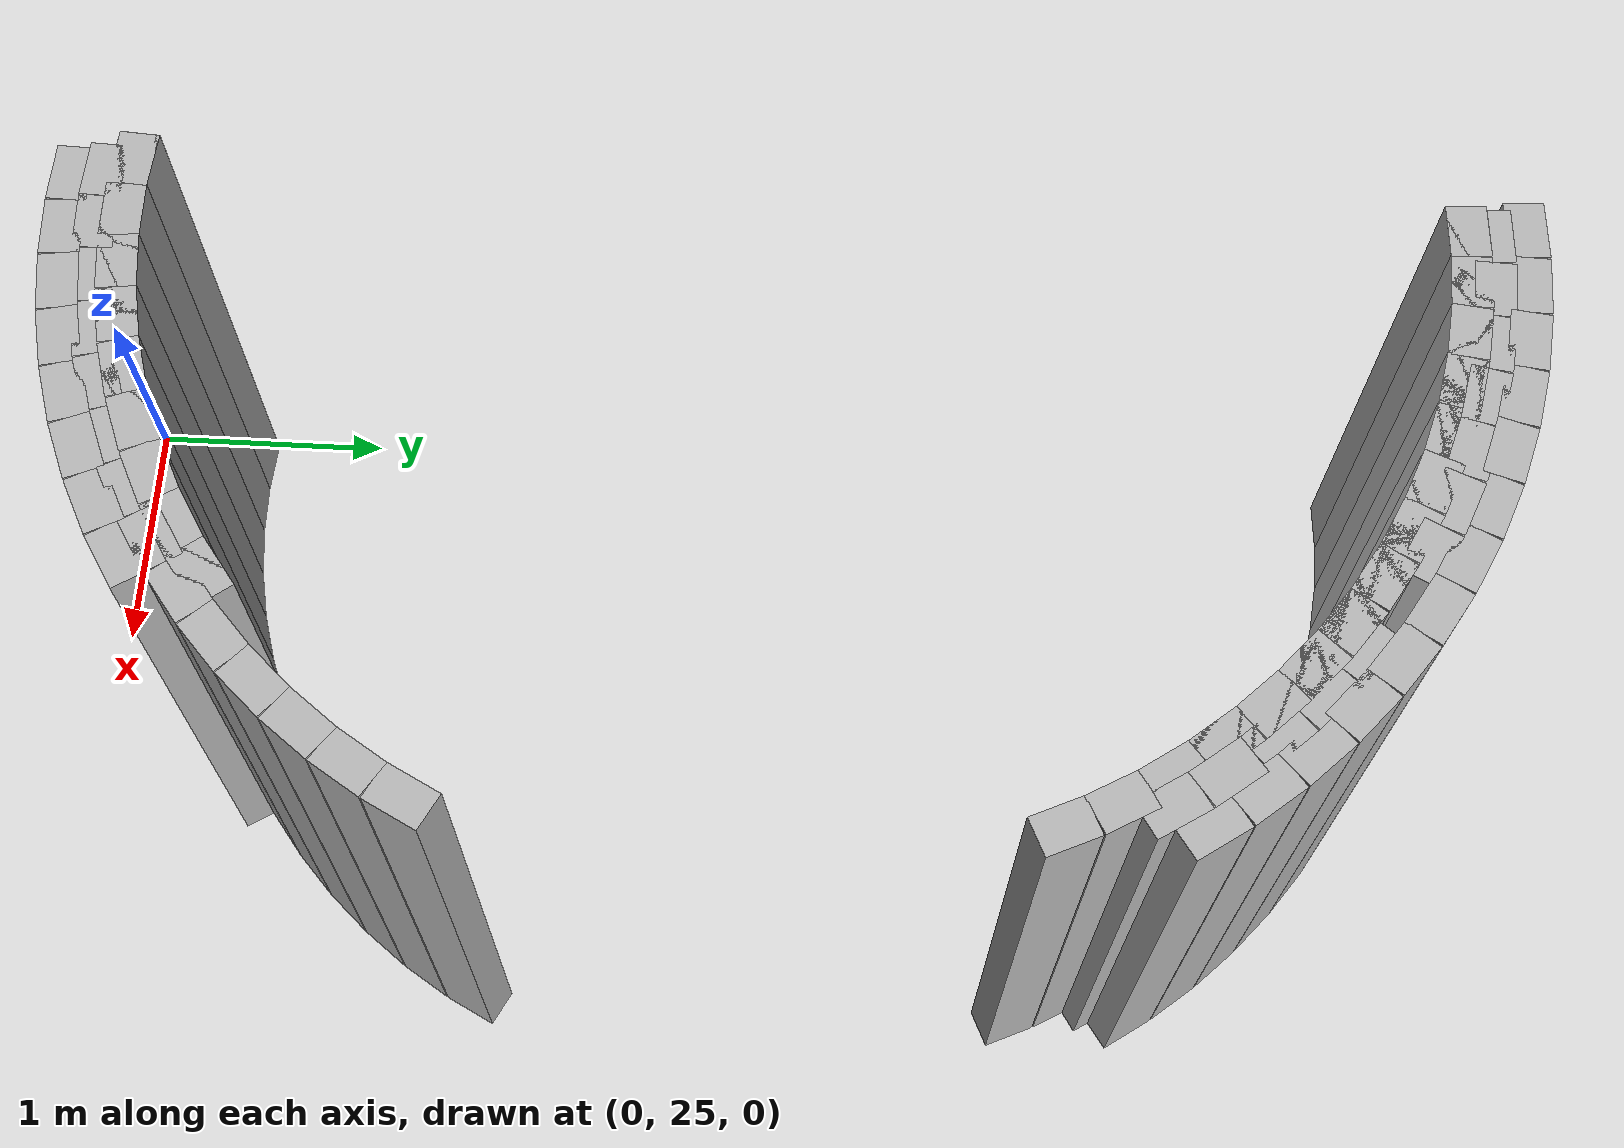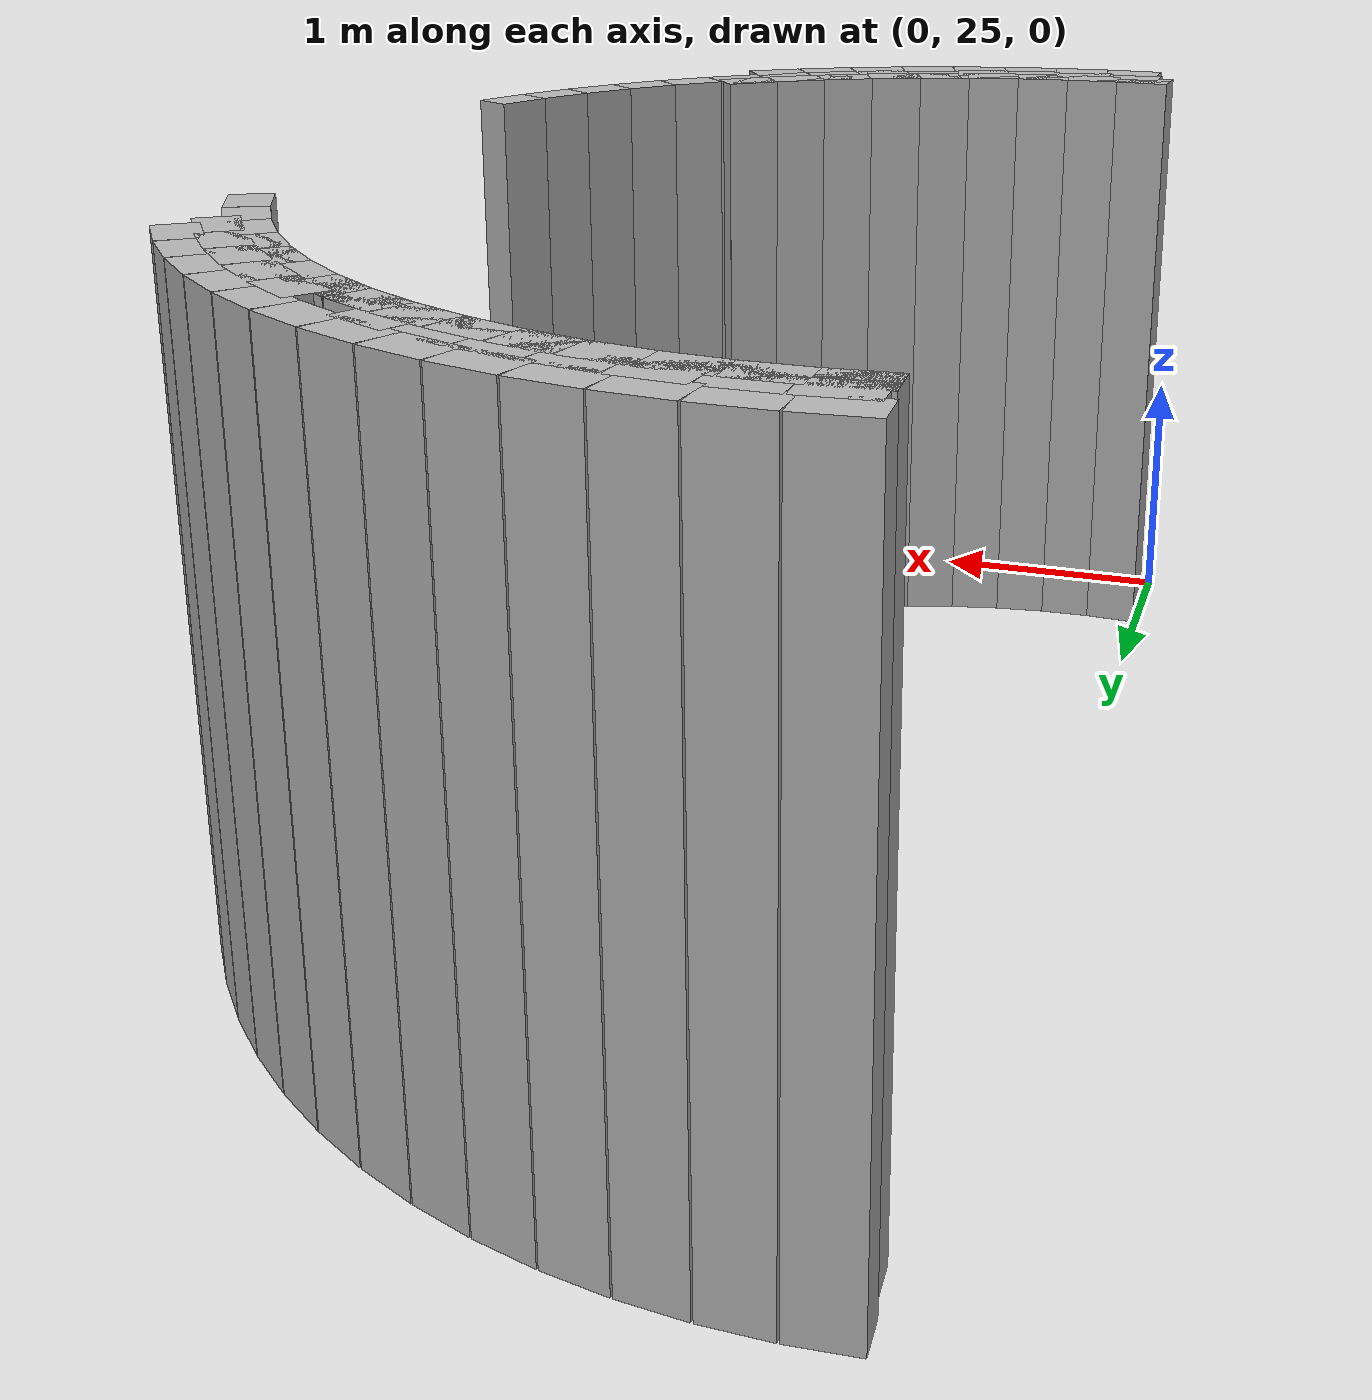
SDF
<sdf version="1.6">
 <model name="sps_0108">
  <static>1</static>
  <allow_auto_disable>0</allow_auto_disable>
  <link name="Wall3677">
   <collision name="collision"><geometry><box><size>0.222353 0.15 2.5</size></box></geometry></collision>
   <visual name="visual">
    <geometry><box><size>0.222353 0.15 2.5</size></box></geometry>
    <transparency>0.0</transparency>
   </visual>
   <pose>1.83828 29.9144 1.25 0 0 -0.654591</pose>
  </link>
  <link name="Wall3678">
   <collision name="collision"><geometry><box><size>0.222517 0.15 2.5</size></box></geometry></collision>
   <visual name="visual">
    <geometry><box><size>0.222517 0.15 2.5</size></box></geometry>
    <transparency>0.0</transparency>
   </visual>
   <pose>2.00848 29.7715 1.25 0 0 -0.742133</pose>
  </link>
  <link name="Wall3679">
   <collision name="collision"><geometry><box><size>0.222393 0.15 2.5</size></box></geometry></collision>
   <visual name="visual">
    <geometry><box><size>0.222393 0.15 2.5</size></box></geometry>
    <transparency>0.0</transparency>
   </visual>
   <pose>2.16558 29.6143 1.25 0 0 -0.829271</pose>
  </link>
  <link name="Wall3680">
   <collision name="collision"><geometry><box><size>0.222546 0.15 2.5</size></box></geometry></collision>
   <visual name="visual">
    <geometry><box><size>0.222546 0.15 2.5</size></box></geometry>
    <transparency>0.0</transparency>
   </visual>
   <pose>2.30837 29.444 1.25 0 0 -0.916873</pose>
  </link>
  <link name="Wall3681">
   <collision name="collision"><geometry><box><size>0.222333 0.15 2.5</size></box></geometry></collision>
   <visual name="visual">
    <geometry><box><size>0.222333 0.15 2.5</size></box></geometry>
    <transparency>0.0</transparency>
   </visual>
   <pose>2.43575 29.2619 1.25 0 0 -1.00396</pose>
  </link>
  <link name="Wall3693">
   <collision name="collision"><geometry><box><size>0.222298 0.15 2.5</size></box></geometry></collision>
   <visual name="visual">
    <geometry><box><size>0.222298 0.15 2.5</size></box></geometry>
    <transparency>0.0</transparency>
   </visual>
   <pose>2.54613 26.7167 1.25 0 0 -2.05053</pose>
  </link>
  <link name="Wall3694">
   <collision name="collision"><geometry><box><size>0.222483 0.15 2.5</size></box></geometry></collision>
   <visual name="visual">
    <geometry><box><size>0.222483 0.15 2.5</size></box></geometry>
    <transparency>0.0</transparency>
   </visual>
   <pose>2.43505 26.5243 1.25 0 0 -2.13818</pose>
  </link>
  <link name="Wall3695">
   <collision name="collision"><geometry><box><size>0.222501 0.15 2.5</size></box></geometry></collision>
   <visual name="visual">
    <geometry><box><size>0.222501 0.15 2.5</size></box></geometry>
    <transparency>0.0</transparency>
   </visual>
   <pose>2.30746 26.3423 1.25 0 0 -2.22626</pose>
  </link>
  <link name="Wall3696">
   <collision name="collision"><geometry><box><size>0.222393 0.15 2.5</size></box></geometry></collision>
   <visual name="visual">
    <geometry><box><size>0.222393 0.15 2.5</size></box></geometry>
    <transparency>0.0</transparency>
   </visual>
   <pose>2.16454 26.1721 1.25 0 0 -2.31232</pose>
  </link>
  <link name="Wall3697">
   <collision name="collision"><geometry><box><size>0.222528 0.15 2.5</size></box></geometry></collision>
   <visual name="visual">
    <geometry><box><size>0.222528 0.15 2.5</size></box></geometry>
    <transparency>0.0</transparency>
   </visual>
   <pose>2.00735 26.015 1.25 0 0 -2.40062</pose>
  </link>
  <link name="Wall3698">
   <collision name="collision"><geometry><box><size>0.222353 0.15 2.5</size></box></geometry></collision>
   <visual name="visual">
    <geometry><box><size>0.222353 0.15 2.5</size></box></geometry>
    <transparency>0.0</transparency>
   </visual>
   <pose>1.83706 25.8722 1.25 0 0 -2.487</pose>
  </link>
  <link name="Wall3699">
   <collision name="collision"><geometry><box><size>0.22267 0.15 2.5</size></box></geometry></collision>
   <visual name="visual">
    <geometry><box><size>0.22267 0.15 2.5</size></box></geometry>
    <transparency>0.0</transparency>
   </visual>
   <pose>1.65496 25.7447 1.25 0 0 -2.57442</pose>
  </link>
  <link name="Wall3700">
   <collision name="collision"><geometry><box><size>0.222298 0.15 2.5</size></box></geometry></collision>
   <visual name="visual">
    <geometry><box><size>0.222298 0.15 2.5</size></box></geometry>
    <transparency>0.0</transparency>
   </visual>
   <pose>1.46246 25.6336 1.25 0 0 -2.66186</pose>
  </link>
  <link name="Wall3701">
   <collision name="collision"><geometry><box><size>0.222512 0.15 2.5</size></box></geometry></collision>
   <visual name="visual">
    <geometry><box><size>0.222512 0.15 2.5</size></box></geometry>
    <transparency>0.0</transparency>
   </visual>
   <pose>1.26104 25.5398 1.25 0 0 -2.74952</pose>
  </link>
  <link name="Wall3702">
   <collision name="collision"><geometry><box><size>0.222473 0.15 2.5</size></box></geometry></collision>
   <visual name="visual">
    <geometry><box><size>0.222473 0.15 2.5</size></box></geometry>
    <transparency>0.0</transparency>
   </visual>
   <pose>1.05215 25.4638 1.25 0 0 -2.83589</pose>
  </link>
  <link name="Wall3703">
   <collision name="collision"><geometry><box><size>0.222472 0.15 2.5</size></box></geometry></collision>
   <visual name="visual">
    <geometry><box><size>0.222472 0.15 2.5</size></box></geometry>
    <transparency>0.0</transparency>
   </visual>
   <pose>0.837455 25.4063 1.25 0 0 -2.92397</pose>
  </link>
  <link name="Wall3704">
   <collision name="collision"><geometry><box><size>0.222478 0.15 2.5</size></box></geometry></collision>
   <visual name="visual">
    <geometry><box><size>0.222478 0.15 2.5</size></box></geometry>
    <transparency>0.0</transparency>
   </visual>
   <pose>0.618552 25.3678 1.25 0 0 -3.01091</pose>
  </link>
  <link name="Wall3705">
   <collision name="collision"><geometry><box><size>0.222436 0.15 2.5</size></box></geometry></collision>
   <visual name="visual">
    <geometry><box><size>0.222436 0.15 2.5</size></box></geometry>
    <transparency>0.0</transparency>
   </visual>
   <pose>0.397147 25.3485 1.25 0 0 -3.0985</pose>
  </link>
  <link name="Wall3706">
   <collision name="collision"><geometry><box><size>0.222382 0.15 2.5</size></box></geometry></collision>
   <visual name="visual">
    <geometry><box><size>0.222382 0.15 2.5</size></box></geometry>
    <transparency>0.0</transparency>
   </visual>
   <pose>0.174949 25.3486 1.25 0 -0 3.09766</pose>
  </link>
  <link name="Wall3741">
   <collision name="collision"><geometry><box><size>0.222375 0.15 2.5</size></box></geometry></collision>
   <visual name="visual">
    <geometry><box><size>0.222375 0.15 2.5</size></box></geometry>
    <transparency>0.0</transparency>
   </visual>
   <pose>0.176353 30.4389 1.25 0 -0 0.0431052</pose>
  </link>
  <link name="Wall3742">
   <collision name="collision"><geometry><box><size>0.222443 0.15 2.5</size></box></geometry></collision>
   <visual name="visual">
    <geometry><box><size>0.222443 0.15 2.5</size></box></geometry>
    <transparency>0.0</transparency>
   </visual>
   <pose>0.398551 30.4388 1.25 0 0 -0.0439157</pose>
  </link>
  <link name="Wall3743">
   <collision name="collision"><geometry><box><size>0.222478 0.15 2.5</size></box></geometry></collision>
   <visual name="visual">
    <geometry><box><size>0.222478 0.15 2.5</size></box></geometry>
    <transparency>0.0</transparency>
   </visual>
   <pose>0.619956 30.4194 1.25 0 0 -0.130684</pose>
  </link>
  <link name="Wall3744">
   <collision name="collision"><geometry><box><size>0.222511 0.15 2.5</size></box></geometry></collision>
   <visual name="visual">
    <geometry><box><size>0.222511 0.15 2.5</size></box></geometry>
    <transparency>0.0</transparency>
   </visual>
   <pose>0.838859 30.3808 1.25 0 0 -0.218431</pose>
  </link>
  <link name="Wall3745">
   <collision name="collision"><geometry><box><size>0.222491 0.15 2.5</size></box></geometry></collision>
   <visual name="visual">
    <geometry><box><size>0.222491 0.15 2.5</size></box></geometry>
    <transparency>0.0</transparency>
   </visual>
   <pose>1.05355 30.3232 1.25 0 0 -0.305961</pose>
  </link>
  <link name="Wall3746">
   <collision name="collision"><geometry><box><size>0.222412 0.15 2.5</size></box></geometry></collision>
   <visual name="visual">
    <geometry><box><size>0.222412 0.15 2.5</size></box></geometry>
    <transparency>0.0</transparency>
   </visual>
   <pose>1.26235 30.2471 1.25 0 0 -0.393145</pose>
  </link>
  <link name="Wall3747">
   <collision name="collision"><geometry><box><size>0.222545 0.15 2.5</size></box></geometry></collision>
   <visual name="visual">
    <geometry><box><size>0.222545 0.15 2.5</size></box></geometry>
    <transparency>0.0</transparency>
   </visual>
   <pose>1.46377 30.1531 1.25 0 0 -0.480084</pose>
  </link>
  <link name="Wall4588">
   <collision name="collision"><geometry><box><size>0.220288 0.15 2.5</size></box></geometry></collision>
   <visual name="visual">
    <geometry><box><size>0.220288 0.15 2.5</size></box></geometry>
    <transparency>0.0</transparency>
   </visual>
   <pose>1.77355 25.9336 1.25 0 0 -2.49793</pose>
  </link>
  <link name="Wall4589">
   <collision name="collision"><geometry><box><size>0.220237 0.15 2.5</size></box></geometry></collision>
   <visual name="visual">
    <geometry><box><size>0.220237 0.15 2.5</size></box></geometry>
    <transparency>0.0</transparency>
   </visual>
   <pose>1.59185 25.8095 1.25 0 0 -2.58672</pose>
  </link>
  <link name="Wall4590">
   <collision name="collision"><geometry><box><size>0.220496 0.15 2.5</size></box></geometry></collision>
   <visual name="visual">
    <geometry><box><size>0.220496 0.15 2.5</size></box></geometry>
    <transparency>0.0</transparency>
   </visual>
   <pose>1.39974 25.702 1.25 0 0 -2.67596</pose>
  </link>
  <link name="Wall4591">
   <collision name="collision"><geometry><box><size>0.220209 0.15 2.5</size></box></geometry></collision>
   <visual name="visual">
    <geometry><box><size>0.220209 0.15 2.5</size></box></geometry>
    <transparency>0.0</transparency>
   </visual>
   <pose>1.19884 25.612 1.25 0 0 -2.76495</pose>
  </link>
  <link name="Wall4592">
   <collision name="collision"><geometry><box><size>0.220436 0.15 2.5</size></box></geometry></collision>
   <visual name="visual">
    <geometry><box><size>0.220436 0.15 2.5</size></box></geometry>
    <transparency>0.0</transparency>
   </visual>
   <pose>0.990745 25.5403 1.25 0 0 -2.8547</pose>
  </link>
  <link name="Wall4593">
   <collision name="collision"><geometry><box><size>0.22032 0.15 2.5</size></box></geometry></collision>
   <visual name="visual">
    <geometry><box><size>0.22032 0.15 2.5</size></box></geometry>
    <transparency>0.0</transparency>
   </visual>
   <pose>0.77703 25.4874 1.25 0 0 -2.94333</pose>
  </link>
  <link name="Wall4594">
   <collision name="collision"><geometry><box><size>0.220284 0.15 2.5</size></box></geometry></collision>
   <visual name="visual">
    <geometry><box><size>0.220284 0.15 2.5</size></box></geometry>
    <transparency>0.0</transparency>
   </visual>
   <pose>0.559531 25.4538 1.25 0 0 -3.03332</pose>
  </link>
  <link name="Wall4595">
   <collision name="collision"><geometry><box><size>0.220442 0.15 2.5</size></box></geometry></collision>
   <visual name="visual">
    <geometry><box><size>0.220442 0.15 2.5</size></box></geometry>
    <transparency>0.0</transparency>
   </visual>
   <pose>0.339835 25.4397 1.25 0 0 -3.12166</pose>
  </link>
  <link name="Wall4596">
   <collision name="collision"><geometry><box><size>0.220325 0.15 2.5</size></box></geometry></collision>
   <visual name="visual">
    <geometry><box><size>0.220325 0.15 2.5</size></box></geometry>
    <transparency>0.0</transparency>
   </visual>
   <pose>0.119743 25.4452 1.25 0 -0 3.07173</pose>
  </link>
  <link name="Wall4619">
   <collision name="collision"><geometry><box><size>0.210897 0.15 2.5</size></box></geometry></collision>
   <visual name="visual">
    <geometry><box><size>0.210897 0.15 2.5</size></box></geometry>
    <transparency>0.0</transparency>
   </visual>
   <pose>0.160148 30.3526 1.25 0 -0 0.0500885</pose>
  </link>
  <link name="Wall4620">
   <collision name="collision"><geometry><box><size>0.210701 0.15 2.5</size></box></geometry></collision>
   <visual name="visual">
    <geometry><box><size>0.210701 0.15 2.5</size></box></geometry>
    <transparency>0.0</transparency>
   </visual>
   <pose>0.37075 30.3542 1.25 0 0 -0.0350581</pose>
  </link>
  <link name="Wall4621">
   <collision name="collision"><geometry><box><size>0.210626 0.15 2.5</size></box></geometry></collision>
   <visual name="visual">
    <geometry><box><size>0.210626 0.15 2.5</size></box></geometry>
    <transparency>0.0</transparency>
   </visual>
   <pose>0.580558 30.3376 1.25 0 0 -0.122594</pose>
  </link>
  <link name="Wall4622">
   <collision name="collision"><geometry><box><size>0.210745 0.15 2.5</size></box></geometry></collision>
   <visual name="visual">
    <geometry><box><size>0.210745 0.15 2.5</size></box></geometry>
    <transparency>0.0</transparency>
   </visual>
   <pose>0.788169 30.3029 1.25 0 0 -0.208585</pose>
  </link>
  <link name="Wall4623">
   <collision name="collision"><geometry><box><size>0.210514 0.15 2.5</size></box></geometry></collision>
   <visual name="visual">
    <geometry><box><size>0.210514 0.15 2.5</size></box></geometry>
    <transparency>0.0</transparency>
   </visual>
   <pose>0.991966 30.2505 1.25 0 0 -0.295067</pose>
  </link>
  <link name="Wall4624">
   <collision name="collision"><geometry><box><size>0.210437 0.15 2.5</size></box></geometry></collision>
   <visual name="visual">
    <geometry><box><size>0.210437 0.15 2.5</size></box></geometry>
    <transparency>0.0</transparency>
   </visual>
   <pose>1.19036 30.1808 1.25 0 0 -0.380668</pose>
  </link>
  <link name="Wall4625">
   <collision name="collision"><geometry><box><size>0.210478 0.15 2.5</size></box></geometry></collision>
   <visual name="visual">
    <geometry><box><size>0.210478 0.15 2.5</size></box></geometry>
    <transparency>0.0</transparency>
   </visual>
   <pose>1.38216 30.0946 1.25 0 0 -0.463907</pose>
  </link>
  <link name="Wall4626">
   <collision name="collision"><geometry><box><size>0.21032 0.15 2.5</size></box></geometry></collision>
   <visual name="visual">
    <geometry><box><size>0.21032 0.15 2.5</size></box></geometry>
    <transparency>0.0</transparency>
   </visual>
   <pose>1.56597 29.9926 1.25 0 0 -0.549279</pose>
  </link>
  <link name="Wall4627">
   <collision name="collision"><geometry><box><size>0.210484 0.15 2.5</size></box></geometry></collision>
   <visual name="visual">
    <geometry><box><size>0.210484 0.15 2.5</size></box></geometry>
    <transparency>0.0</transparency>
   </visual>
   <pose>1.74047 29.8754 1.25 0 0 -0.6337</pose>
  </link>
  <link name="Wall4628">
   <collision name="collision"><geometry><box><size>0.210433 0.15 2.5</size></box></geometry></collision>
   <visual name="visual">
    <geometry><box><size>0.210433 0.15 2.5</size></box></geometry>
    <transparency>0.0</transparency>
   </visual>
   <pose>1.90447 29.7438 1.25 0 0 -0.718694</pose>
  </link>
  <link name="Wall4629">
   <collision name="collision"><geometry><box><size>0.210473 0.15 2.5</size></box></geometry></collision>
   <visual name="visual">
    <geometry><box><size>0.210473 0.15 2.5</size></box></geometry>
    <transparency>0.0</transparency>
   </visual>
   <pose>2.05675 29.5988 1.25 0 0 -0.803034</pose>
  </link>
  <link name="Wall4630">
   <collision name="collision"><geometry><box><size>0.210419 0.15 2.5</size></box></geometry></collision>
   <visual name="visual">
    <geometry><box><size>0.210419 0.15 2.5</size></box></geometry>
    <transparency>0.0</transparency>
   </visual>
   <pose>2.19625 29.4415 1.25 0 0 -0.88772</pose>
  </link>
  <link name="Wall4631">
   <collision name="collision"><geometry><box><size>0.210378 0.15 2.5</size></box></geometry></collision>
   <visual name="visual">
    <geometry><box><size>0.210378 0.15 2.5</size></box></geometry>
    <transparency>0.0</transparency>
   </visual>
   <pose>2.32195 29.273 1.25 0 0 -0.971931</pose>
  </link>
  <link name="Wall4632">
   <collision name="collision"><geometry><box><size>0.210387 0.15 2.5</size></box></geometry></collision>
   <visual name="visual">
    <geometry><box><size>0.210387 0.15 2.5</size></box></geometry>
    <transparency>0.0</transparency>
   </visual>
   <pose>2.43294 29.0945 1.25 0 0 -1.05705</pose>
  </link>
  <link name="Wall4633">
   <collision name="collision"><geometry><box><size>0.210494 0.15 2.5</size></box></geometry></collision>
   <visual name="visual">
    <geometry><box><size>0.210494 0.15 2.5</size></box></geometry>
    <transparency>0.0</transparency>
   </visual>
   <pose>2.52843 28.9072 1.25 0 0 -1.14165</pose>
  </link>
  <link name="Wall5666">
   <collision name="collision"><geometry><box><size>0.220581 0.15 2.5</size></box></geometry></collision>
   <visual name="visual">
    <geometry><box><size>0.220581 0.15 2.5</size></box></geometry>
    <transparency>0.0</transparency>
   </visual>
   <pose>1.77303 25.9335 1.25 0 0 -2.49754</pose>
  </link>
  <link name="Wall5667">
   <collision name="collision"><geometry><box><size>0.220205 0.15 2.5</size></box></geometry></collision>
   <visual name="visual">
    <geometry><box><size>0.220205 0.15 2.5</size></box></geometry>
    <transparency>0.0</transparency>
   </visual>
   <pose>1.59124 25.8093 1.25 0 0 -2.58696</pose>
  </link>
  <link name="Wall5668">
   <collision name="collision"><geometry><box><size>0.220195 0.15 2.5</size></box></geometry></collision>
   <visual name="visual">
    <geometry><box><size>0.220195 0.15 2.5</size></box></geometry>
    <transparency>0.0</transparency>
   </visual>
   <pose>1.39925 25.7019 1.25 0 0 -2.67621</pose>
  </link>
  <link name="Wall5669">
   <collision name="collision"><geometry><box><size>0.220436 0.15 2.5</size></box></geometry></collision>
   <visual name="visual">
    <geometry><box><size>0.220436 0.15 2.5</size></box></geometry>
    <transparency>0.0</transparency>
   </visual>
   <pose>1.19836 25.612 1.25 0 0 -2.76535</pose>
  </link>
  <link name="Wall5670">
   <collision name="collision"><geometry><box><size>0.220201 0.15 2.5</size></box></geometry></collision>
   <visual name="visual">
    <geometry><box><size>0.220201 0.15 2.5</size></box></geometry>
    <transparency>0.0</transparency>
   </visual>
   <pose>0.990257 25.5403 1.25 0 0 -2.85438</pose>
  </link>
  <link name="Wall5671">
   <collision name="collision"><geometry><box><size>0.22032 0.15 2.5</size></box></geometry></collision>
   <visual name="visual">
    <geometry><box><size>0.22032 0.15 2.5</size></box></geometry>
    <transparency>0.0</transparency>
   </visual>
   <pose>0.776664 25.4874 1.25 0 0 -2.94333</pose>
  </link>
  <link name="Wall5672">
   <collision name="collision"><geometry><box><size>0.220311 0.15 2.5</size></box></geometry></collision>
   <visual name="visual">
    <geometry><box><size>0.220311 0.15 2.5</size></box></geometry>
    <transparency>0.0</transparency>
   </visual>
   <pose>0.559165 25.4537 1.25 0 0 -3.03222</pose>
  </link>
  <link name="Wall5673">
   <collision name="collision"><geometry><box><size>0.220442 0.15 2.5</size></box></geometry></collision>
   <visual name="visual">
    <geometry><box><size>0.220442 0.15 2.5</size></box></geometry>
    <transparency>0.0</transparency>
   </visual>
   <pose>0.339469 25.4395 1.25 0 0 -3.12166</pose>
  </link>
  <link name="Wall5674">
   <collision name="collision"><geometry><box><size>0.220329 0.15 2.5</size></box></geometry></collision>
   <visual name="visual">
    <geometry><box><size>0.220329 0.15 2.5</size></box></geometry>
    <transparency>0.0</transparency>
   </visual>
   <pose>0.119376 25.445 1.25 0 -0 3.07145</pose>
  </link>
  <link name="Wall5697">
   <collision name="collision"><geometry><box><size>0.210714 0.15 2.5</size></box></geometry></collision>
   <visual name="visual">
    <geometry><box><size>0.210714 0.15 2.5</size></box></geometry>
    <transparency>0.0</transparency>
   </visual>
   <pose>0.160056 30.3526 1.25 0 -0 0.050132</pose>
  </link>
  <link name="Wall5698">
   <collision name="collision"><geometry><box><size>0.210707 0.15 2.5</size></box></geometry></collision>
   <visual name="visual">
    <geometry><box><size>0.210707 0.15 2.5</size></box></geometry>
    <transparency>0.0</transparency>
   </visual>
   <pose>0.370567 30.3541 1.25 0 0 -0.0359266</pose>
  </link>
  <link name="Wall5699">
   <collision name="collision"><geometry><box><size>0.210815 0.15 2.5</size></box></geometry></collision>
   <visual name="visual">
    <geometry><box><size>0.210815 0.15 2.5</size></box></geometry>
    <transparency>0.0</transparency>
   </visual>
   <pose>0.580467 30.3374 1.25 0 0 -0.122775</pose>
  </link>
  <link name="Wall5700">
   <collision name="collision"><geometry><box><size>0.210694 0.15 2.5</size></box></geometry></collision>
   <visual name="visual">
    <geometry><box><size>0.210694 0.15 2.5</size></box></geometry>
    <transparency>0.0</transparency>
   </visual>
   <pose>0.788169 30.3028 1.25 0 0 -0.207451</pose>
  </link>
  <link name="Wall5701">
   <collision name="collision"><geometry><box><size>0.210334 0.15 2.5</size></box></geometry></collision>
   <visual name="visual">
    <geometry><box><size>0.210334 0.15 2.5</size></box></geometry>
    <transparency>0.0</transparency>
   </visual>
   <pose>0.991844 30.2504 1.25 0 0 -0.296237</pose>
  </link>
  <link name="Wall5702">
   <collision name="collision"><geometry><box><size>0.210596 0.15 2.5</size></box></geometry></collision>
   <visual name="visual">
    <geometry><box><size>0.210596 0.15 2.5</size></box></geometry>
    <transparency>0.0</transparency>
   </visual>
   <pose>1.19024 30.1807 1.25 0 0 -0.37943</pose>
  </link>
  <link name="Wall5703">
   <collision name="collision"><geometry><box><size>0.210259 0.15 2.5</size></box></geometry></collision>
   <visual name="visual">
    <geometry><box><size>0.210259 0.15 2.5</size></box></geometry>
    <transparency>0.0</transparency>
   </visual>
   <pose>1.38204 30.0946 1.25 0 0 -0.464427</pose>
  </link>
  <link name="Wall5704">
   <collision name="collision"><geometry><box><size>0.210624 0.15 2.5</size></box></geometry></collision>
   <visual name="visual">
    <geometry><box><size>0.210624 0.15 2.5</size></box></geometry>
    <transparency>0.0</transparency>
   </visual>
   <pose>1.56585 29.9925 1.25 0 0 -0.549415</pose>
  </link>
  <link name="Wall5705">
   <collision name="collision"><geometry><box><size>0.210484 0.15 2.5</size></box></geometry></collision>
   <visual name="visual">
    <geometry><box><size>0.210484 0.15 2.5</size></box></geometry>
    <transparency>0.0</transparency>
   </visual>
   <pose>1.74047 29.8752 1.25 0 0 -0.6337</pose>
  </link>
  <link name="Wall5706">
   <collision name="collision"><geometry><box><size>0.210313 0.15 2.5</size></box></geometry></collision>
   <visual name="visual">
    <geometry><box><size>0.210313 0.15 2.5</size></box></geometry>
    <transparency>0.0</transparency>
   </visual>
   <pose>1.90447 29.7437 1.25 0 0 -0.718038</pose>
  </link>
  <link name="Wall5707">
   <collision name="collision"><geometry><box><size>0.210473 0.15 2.5</size></box></geometry></collision>
   <visual name="visual">
    <geometry><box><size>0.210473 0.15 2.5</size></box></geometry>
    <transparency>0.0</transparency>
   </visual>
   <pose>2.05675 29.5988 1.25 0 0 -0.803034</pose>
  </link>
  <link name="Wall5708">
   <collision name="collision"><geometry><box><size>0.210419 0.15 2.5</size></box></geometry></collision>
   <visual name="visual">
    <geometry><box><size>0.210419 0.15 2.5</size></box></geometry>
    <transparency>0.0</transparency>
   </visual>
   <pose>2.19625 29.4415 1.25 0 0 -0.88772</pose>
  </link>
  <link name="Wall5709">
   <collision name="collision"><geometry><box><size>0.210378 0.15 2.5</size></box></geometry></collision>
   <visual name="visual">
    <geometry><box><size>0.210378 0.15 2.5</size></box></geometry>
    <transparency>0.0</transparency>
   </visual>
   <pose>2.32195 29.273 1.25 0 0 -0.971931</pose>
  </link>
  <link name="Wall5710">
   <collision name="collision"><geometry><box><size>0.210387 0.15 2.5</size></box></geometry></collision>
   <visual name="visual">
    <geometry><box><size>0.210387 0.15 2.5</size></box></geometry>
    <transparency>0.0</transparency>
   </visual>
   <pose>2.43294 29.0945 1.25 0 0 -1.05705</pose>
  </link>
  <link name="Wall5711">
   <collision name="collision"><geometry><box><size>0.210494 0.15 2.5</size></box></geometry></collision>
   <visual name="visual">
    <geometry><box><size>0.210494 0.15 2.5</size></box></geometry>
    <transparency>0.0</transparency>
   </visual>
   <pose>2.52843 28.9072 1.25 0 0 -1.14165</pose>
  </link>
  <link name="Wall6421">
   <collision name="collision"><geometry><box><size>0.229307 0.15 2.5</size></box></geometry></collision>
   <visual name="visual">
    <geometry><box><size>0.229307 0.15 2.5</size></box></geometry>
    <transparency>0.0</transparency>
   </visual>
   <pose>0.145164 30.5636 1.25 0 -0 0.0513939</pose>
  </link>
  <link name="Wall6422">
   <collision name="collision"><geometry><box><size>0.229326 0.15 2.5</size></box></geometry></collision>
   <visual name="visual">
    <geometry><box><size>0.229326 0.15 2.5</size></box></geometry>
    <transparency>0.0</transparency>
   </visual>
   <pose>0.374259 30.5655 1.25 0 0 -0.0348727</pose>
  </link>
  <link name="Wall6423">
   <collision name="collision"><geometry><box><size>0.229106 0.15 2.5</size></box></geometry></collision>
   <visual name="visual">
    <geometry><box><size>0.229106 0.15 2.5</size></box></geometry>
    <transparency>0.0</transparency>
   </visual>
   <pose>0.602561 30.5476 1.25 0 0 -0.121513</pose>
  </link>
  <link name="Wall6424">
   <collision name="collision"><geometry><box><size>0.229323 0.15 2.5</size></box></geometry></collision>
   <visual name="visual">
    <geometry><box><size>0.229323 0.15 2.5</size></box></geometry>
    <transparency>0.0</transparency>
   </visual>
   <pose>0.828452 30.51 1.25 0 0 -0.208305</pose>
  </link>
  <link name="Wall6425">
   <collision name="collision"><geometry><box><size>0.229075 0.15 2.5</size></box></geometry></collision>
   <visual name="visual">
    <geometry><box><size>0.229075 0.15 2.5</size></box></geometry>
    <transparency>0.0</transparency>
   </visual>
   <pose>1.05025 30.4531 1.25 0 0 -0.294111</pose>
  </link>
  <link name="Wall6426">
   <collision name="collision"><geometry><box><size>0.229037 0.15 2.5</size></box></geometry></collision>
   <visual name="visual">
    <geometry><box><size>0.229037 0.15 2.5</size></box></geometry>
    <transparency>0.0</transparency>
   </visual>
   <pose>1.26626 30.3775 1.25 0 0 -0.37917</pose>
  </link>
  <link name="Wall6427">
   <collision name="collision"><geometry><box><size>0.229011 0.15 2.5</size></box></geometry></collision>
   <visual name="visual">
    <geometry><box><size>0.229011 0.15 2.5</size></box></geometry>
    <transparency>0.0</transparency>
   </visual>
   <pose>1.47506 30.2839 1.25 0 0 -0.463648</pose>
  </link>
  <link name="Wall6428">
   <collision name="collision"><geometry><box><size>0.229057 0.15 2.5</size></box></geometry></collision>
   <visual name="visual">
    <geometry><box><size>0.229057 0.15 2.5</size></box></geometry>
    <transparency>0.0</transparency>
   </visual>
   <pose>1.67516 30.1729 1.25 0 0 -0.549194</pose>
  </link>
  <link name="Wall6429">
   <collision name="collision"><geometry><box><size>0.229089 0.15 2.5</size></box></geometry></collision>
   <visual name="visual">
    <geometry><box><size>0.229089 0.15 2.5</size></box></geometry>
    <transparency>0.0</transparency>
   </visual>
   <pose>1.86517 30.0453 1.25 0 0 -0.633537</pose>
  </link>
  <link name="Wall6430">
   <collision name="collision"><geometry><box><size>0.229031 0.15 2.5</size></box></geometry></collision>
   <visual name="visual">
    <geometry><box><size>0.229031 0.15 2.5</size></box></geometry>
    <transparency>0.0</transparency>
   </visual>
   <pose>2.04366 29.9021 1.25 0 0 -0.71883</pose>
  </link>
  <link name="Wall6431">
   <collision name="collision"><geometry><box><size>0.228992 0.15 2.5</size></box></geometry></collision>
   <visual name="visual">
    <geometry><box><size>0.228992 0.15 2.5</size></box></geometry>
    <transparency>0.0</transparency>
   </visual>
   <pose>2.20934 29.7443 1.25 0 0 -0.803304</pose>
  </link>
  <link name="Wall6432">
   <collision name="collision"><geometry><box><size>0.229053 0.15 2.5</size></box></geometry></collision>
   <visual name="visual">
    <geometry><box><size>0.229053 0.15 2.5</size></box></geometry>
    <transparency>0.0</transparency>
   </visual>
   <pose>2.36105 29.573 1.25 0 0 -0.888648</pose>
  </link>
  <link name="Wall6433">
   <collision name="collision"><geometry><box><size>0.229167 0.15 2.5</size></box></geometry></collision>
   <visual name="visual">
    <geometry><box><size>0.229167 0.15 2.5</size></box></geometry>
    <transparency>0.0</transparency>
   </visual>
   <pose>2.49776 29.3894 1.25 0 0 -0.972748</pose>
  </link>
  <link name="Wall18866">
   <collision name="collision"><geometry><box><size>0.210714 0.15 2.5</size></box></geometry></collision>
   <visual name="visual">
    <geometry><box><size>0.210714 0.15 2.5</size></box></geometry>
    <transparency>0.0</transparency>
   </visual>
   <pose>0.160056 30.3524 1.25 0 -0 0.050132</pose>
  </link>
  <link name="Wall18867">
   <collision name="collision"><geometry><box><size>0.210707 0.15 2.5</size></box></geometry></collision>
   <visual name="visual">
    <geometry><box><size>0.210707 0.15 2.5</size></box></geometry>
    <transparency>0.0</transparency>
   </visual>
   <pose>0.370567 30.3539 1.25 0 0 -0.0359266</pose>
  </link>
  <link name="Wall18868">
   <collision name="collision"><geometry><box><size>0.210551 0.15 2.5</size></box></geometry></collision>
   <visual name="visual">
    <geometry><box><size>0.210551 0.15 2.5</size></box></geometry>
    <transparency>0.0</transparency>
   </visual>
   <pose>0.580344 30.3373 1.25 0 0 -0.122054</pose>
  </link>
  <link name="Wall18869">
   <collision name="collision"><geometry><box><size>0.21083 0.15 2.5</size></box></geometry></collision>
   <visual name="visual">
    <geometry><box><size>0.21083 0.15 2.5</size></box></geometry>
    <transparency>0.0</transparency>
   </visual>
   <pose>0.787956 30.3026 1.25 0 0 -0.209092</pose>
  </link>
  <link name="Wall18870">
   <collision name="collision"><geometry><box><size>0.210455 0.15 2.5</size></box></geometry></collision>
   <visual name="visual">
    <geometry><box><size>0.210455 0.15 2.5</size></box></geometry>
    <transparency>0.0</transparency>
   </visual>
   <pose>0.991752 30.2501 1.25 0 0 -0.295151</pose>
  </link>
  <link name="Wall18871">
   <collision name="collision"><geometry><box><size>0.210426 0.15 2.5</size></box></geometry></collision>
   <visual name="visual">
    <geometry><box><size>0.210426 0.15 2.5</size></box></geometry>
    <transparency>0.0</transparency>
   </visual>
   <pose>1.19015 30.1805 1.25 0 0 -0.379752</pose>
  </link>
  <link name="Wall18872">
   <collision name="collision"><geometry><box><size>0.210423 0.15 2.5</size></box></geometry></collision>
   <visual name="visual">
    <geometry><box><size>0.210423 0.15 2.5</size></box></geometry>
    <transparency>0.0</transparency>
   </visual>
   <pose>1.38195 30.0944 1.25 0 0 -0.464037</pose>
  </link>
  <link name="Wall18873">
   <collision name="collision"><geometry><box><size>0.210372 0.15 2.5</size></box></geometry></collision>
   <visual name="visual">
    <geometry><box><size>0.210372 0.15 2.5</size></box></geometry>
    <transparency>0.0</transparency>
   </visual>
   <pose>1.56576 29.9924 1.25 0 0 -0.549127</pose>
  </link>
  <link name="Wall18874">
   <collision name="collision"><geometry><box><size>0.210435 0.15 2.5</size></box></geometry></collision>
   <visual name="visual">
    <geometry><box><size>0.210435 0.15 2.5</size></box></geometry>
    <transparency>0.0</transparency>
   </visual>
   <pose>1.74026 29.8752 1.25 0 0 -0.633872</pose>
  </link>
  <link name="Wall18875">
   <collision name="collision"><geometry><box><size>0.21052 0.15 2.5</size></box></geometry></collision>
   <visual name="visual">
    <geometry><box><size>0.21052 0.15 2.5</size></box></geometry>
    <transparency>0.0</transparency>
   </visual>
   <pose>1.90426 29.7436 1.25 0 0 -0.718721</pose>
  </link>
  <link name="Wall18876">
   <collision name="collision"><geometry><box><size>0.210297 0.15 2.5</size></box></geometry></collision>
   <visual name="visual">
    <geometry><box><size>0.210297 0.15 2.5</size></box></geometry>
    <transparency>0.0</transparency>
   </visual>
   <pose>2.05657 29.5987 1.25 0 0 -0.802227</pose>
  </link>
  <link name="Wall18877">
   <collision name="collision"><geometry><box><size>0.210534 0.15 2.5</size></box></geometry></collision>
   <visual name="visual">
    <geometry><box><size>0.210534 0.15 2.5</size></box></geometry>
    <transparency>0.0</transparency>
   </visual>
   <pose>2.19616 29.4415 1.25 0 0 -0.887045</pose>
  </link>
  <link name="Wall18878">
   <collision name="collision"><geometry><box><size>0.210378 0.15 2.5</size></box></geometry></collision>
   <visual name="visual">
    <geometry><box><size>0.210378 0.15 2.5</size></box></geometry>
    <transparency>0.0</transparency>
   </visual>
   <pose>2.32195 29.273 1.25 0 0 -0.971931</pose>
  </link>
  <link name="Wall18879">
   <collision name="collision"><geometry><box><size>0.210387 0.15 2.5</size></box></geometry></collision>
   <visual name="visual">
    <geometry><box><size>0.210387 0.15 2.5</size></box></geometry>
    <transparency>0.0</transparency>
   </visual>
   <pose>2.43294 29.0945 1.25 0 0 -1.05705</pose>
  </link>
  <link name="Wall18880">
   <collision name="collision"><geometry><box><size>0.210494 0.15 2.5</size></box></geometry></collision>
   <visual name="visual">
    <geometry><box><size>0.210494 0.15 2.5</size></box></geometry>
    <transparency>0.0</transparency>
   </visual>
   <pose>2.52843 28.9072 1.25 0 0 -1.14165</pose>
  </link>
  <link name="Wall24350">
   <collision name="collision"><geometry><box><size>0.220581 0.15 2.5</size></box></geometry></collision>
   <visual name="visual">
    <geometry><box><size>0.220581 0.15 2.5</size></box></geometry>
    <transparency>0.0</transparency>
   </visual>
   <pose>1.77303 25.9335 1.25 0 0 -2.49754</pose>
  </link>
  <link name="Wall24351">
   <collision name="collision"><geometry><box><size>0.220109 0.15 2.5</size></box></geometry></collision>
   <visual name="visual">
    <geometry><box><size>0.220109 0.15 2.5</size></box></geometry>
    <transparency>0.0</transparency>
   </visual>
   <pose>1.59124 25.8094 1.25 0 0 -2.58767</pose>
  </link>
  <link name="Wall24352">
   <collision name="collision"><geometry><box><size>0.220277 0.15 2.5</size></box></geometry></collision>
   <visual name="visual">
    <geometry><box><size>0.220277 0.15 2.5</size></box></geometry>
    <transparency>0.0</transparency>
   </visual>
   <pose>1.39925 25.702 1.25 0 0 -2.67547</pose>
  </link>
  <link name="Wall24353">
   <collision name="collision"><geometry><box><size>0.220436 0.15 2.5</size></box></geometry></collision>
   <visual name="visual">
    <geometry><box><size>0.220436 0.15 2.5</size></box></geometry>
    <transparency>0.0</transparency>
   </visual>
   <pose>1.19836 25.612 1.25 0 0 -2.76535</pose>
  </link>
  <link name="Wall24354">
   <collision name="collision"><geometry><box><size>0.220201 0.15 2.5</size></box></geometry></collision>
   <visual name="visual">
    <geometry><box><size>0.220201 0.15 2.5</size></box></geometry>
    <transparency>0.0</transparency>
   </visual>
   <pose>0.990257 25.5403 1.25 0 0 -2.85438</pose>
  </link>
  <link name="Wall24355">
   <collision name="collision"><geometry><box><size>0.220284 0.15 2.5</size></box></geometry></collision>
   <visual name="visual">
    <geometry><box><size>0.220284 0.15 2.5</size></box></geometry>
    <transparency>0.0</transparency>
   </visual>
   <pose>0.776664 25.4875 1.25 0 0 -2.94414</pose>
  </link>
  <link name="Wall24356">
   <collision name="collision"><geometry><box><size>0.220304 0.15 2.5</size></box></geometry></collision>
   <visual name="visual">
    <geometry><box><size>0.220304 0.15 2.5</size></box></geometry>
    <transparency>0.0</transparency>
   </visual>
   <pose>0.559165 25.4539 1.25 0 0 -3.0325</pose>
  </link>
  <link name="Wall24357">
   <collision name="collision"><geometry><box><size>0.220442 0.15 2.5</size></box></geometry></collision>
   <visual name="visual">
    <geometry><box><size>0.220442 0.15 2.5</size></box></geometry>
    <transparency>0.0</transparency>
   </visual>
   <pose>0.339469 25.4397 1.25 0 0 -3.12166</pose>
  </link>
  <link name="Wall24358">
   <collision name="collision"><geometry><box><size>0.220142 0.15 2.5</size></box></geometry></collision>
   <visual name="visual">
    <geometry><box><size>0.220142 0.15 2.5</size></box></geometry>
    <transparency>0.0</transparency>
   </visual>
   <pose>0.119468 25.4452 1.25 0 -0 3.07167</pose>
  </link>
  <link name="Wall27365">
   <collision name="collision"><geometry><box><size>0.228785 0.15 2.5</size></box></geometry></collision>
   <visual name="visual">
    <geometry><box><size>0.228785 0.15 2.5</size></box></geometry>
    <transparency>0.0</transparency>
   </visual>
   <pose>1.71917 25.6406 1.25 0 0 -2.57816</pose>
  </link>
  <link name="Wall27366">
   <collision name="collision"><geometry><box><size>0.229005 0.15 2.5</size></box></geometry></collision>
   <visual name="visual">
    <geometry><box><size>0.229005 0.15 2.5</size></box></geometry>
    <transparency>0.0</transparency>
   </visual>
   <pose>1.52074 25.5269 1.25 0 0 -2.66448</pose>
  </link>
  <link name="Wall27367">
   <collision name="collision"><geometry><box><size>0.228816 0.15 2.5</size></box></geometry></collision>
   <visual name="visual">
    <geometry><box><size>0.228816 0.15 2.5</size></box></geometry>
    <transparency>0.0</transparency>
   </visual>
   <pose>1.31335 25.4305 1.25 0 0 -2.7485</pose>
  </link>
  <link name="Wall27368">
   <collision name="collision"><geometry><box><size>0.228841 0.15 2.5</size></box></geometry></collision>
   <visual name="visual">
    <geometry><box><size>0.228841 0.15 2.5</size></box></geometry>
    <transparency>0.0</transparency>
   </visual>
   <pose>1.09856 25.3522 1.25 0 0 -2.83545</pose>
  </link>
  <link name="Wall27369">
   <collision name="collision"><geometry><box><size>0.228828 0.15 2.5</size></box></geometry></collision>
   <visual name="visual">
    <geometry><box><size>0.228828 0.15 2.5</size></box></geometry>
    <transparency>0.0</transparency>
   </visual>
   <pose>0.87786 25.2925 1.25 0 0 -2.91945</pose>
  </link>
  <link name="Wall27370">
   <collision name="collision"><geometry><box><size>0.228916 0.15 2.5</size></box></geometry></collision>
   <visual name="visual">
    <geometry><box><size>0.228916 0.15 2.5</size></box></geometry>
    <transparency>0.0</transparency>
   </visual>
   <pose>0.652854 25.2518 1.25 0 0 -3.00573</pose>
  </link>
  <link name="Wall27371">
   <collision name="collision"><geometry><box><size>0.22888 0.15 2.5</size></box></geometry></collision>
   <visual name="visual">
    <geometry><box><size>0.22888 0.15 2.5</size></box></geometry>
    <transparency>0.0</transparency>
   </visual>
   <pose>0.425163 25.2304 1.25 0 0 -3.0901</pose>
  </link>
  <link name="Wall27372">
   <collision name="collision"><geometry><box><size>0.22896 0.15 2.5</size></box></geometry></collision>
   <visual name="visual">
    <geometry><box><size>0.22896 0.15 2.5</size></box></geometry>
    <transparency>0.0</transparency>
   </visual>
   <pose>0.196464 25.2285 1.25 0 -0 3.10666</pose>
  </link>
 </model>
</sdf>
